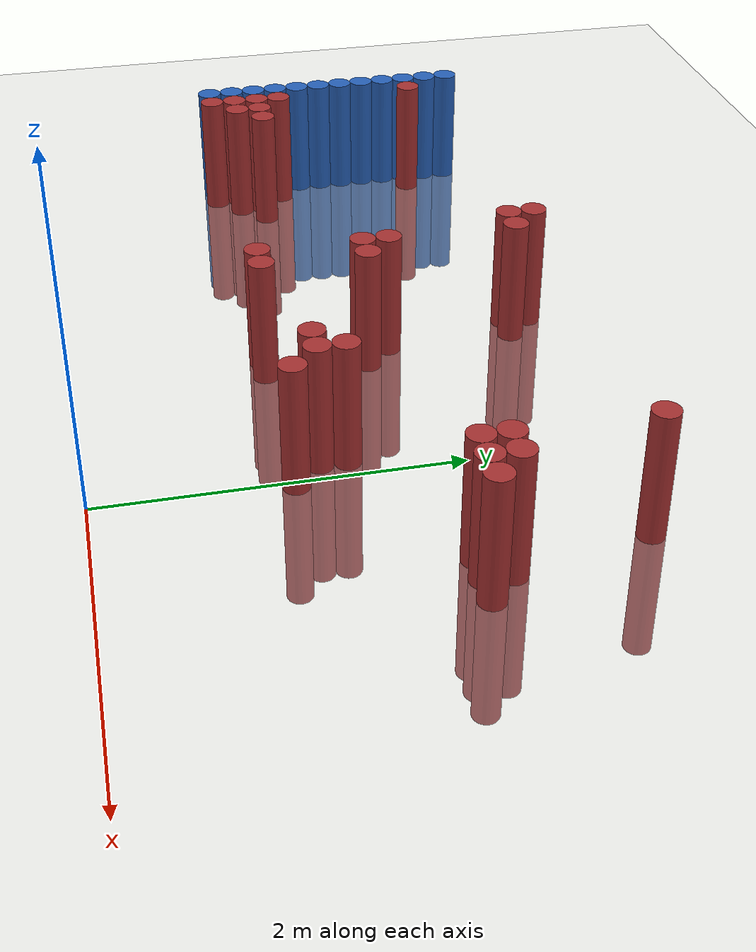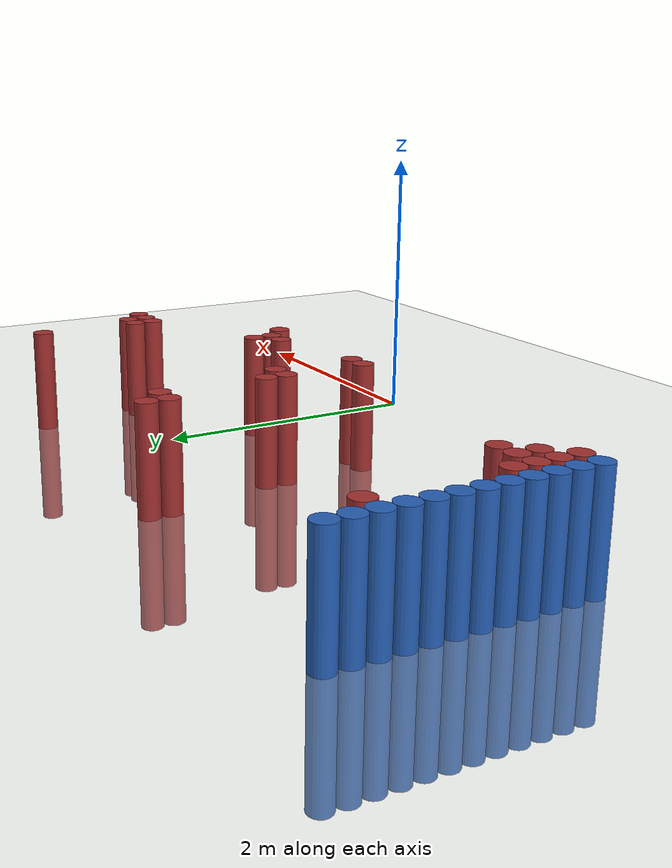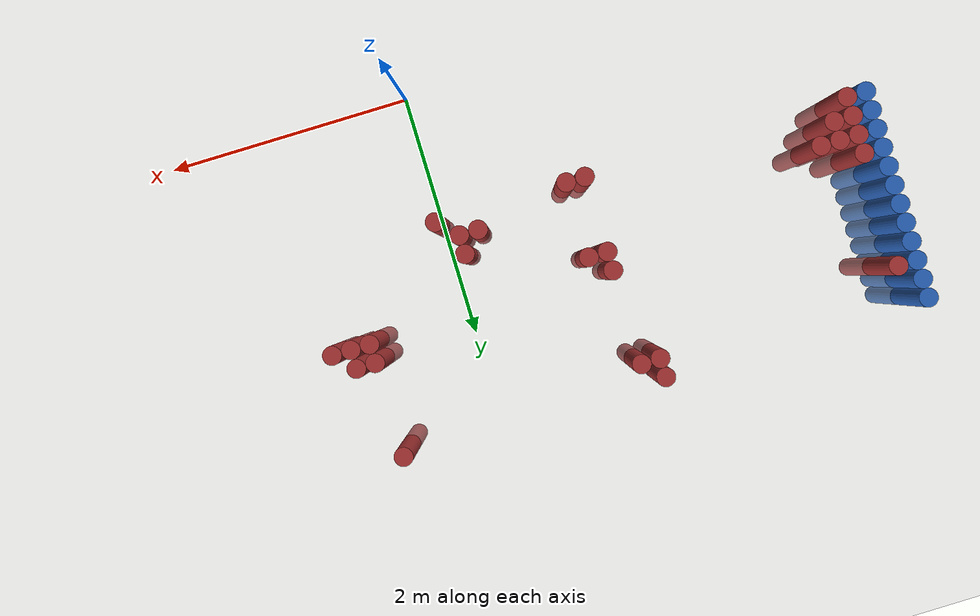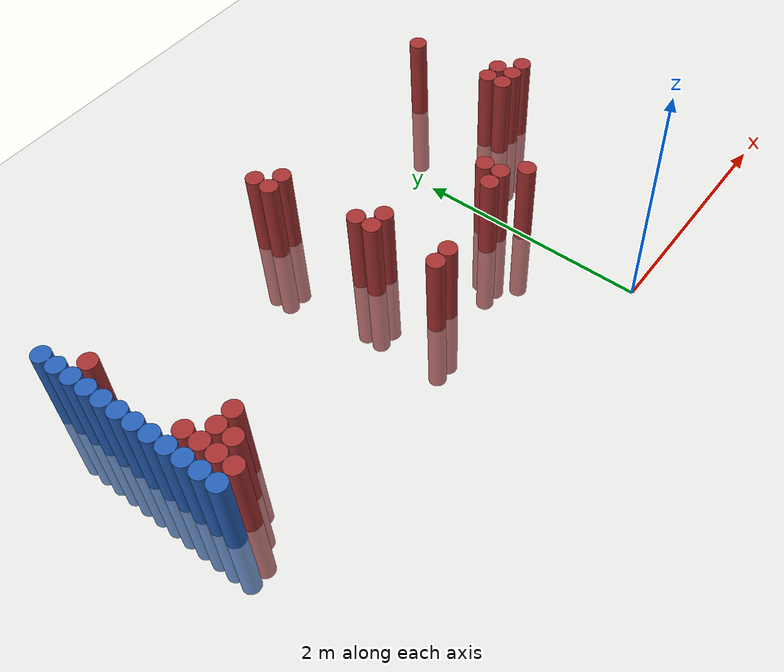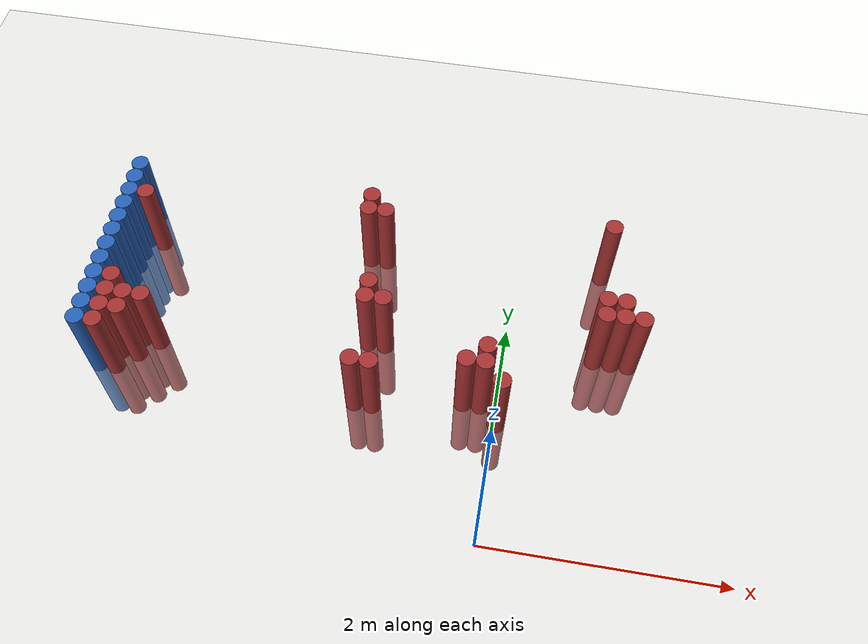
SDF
<sdf version="1.6">
 <world name="default">
  <model name="ground_plane">
   <static>1</static>
   <link name="link">
    <collision name="collision">
     <geometry><plane><normal>0 0 1</normal><size>100 100</size></plane></geometry>
     <surface><friction><ode><mu>100</mu><mu2>50</mu2></ode></friction></surface>
    </collision>
    <visual name="visual">
     <cast_shadows>0</cast_shadows>
     <geometry><plane><normal>0 0 1</normal><size>100 100</size></plane></geometry>
     <material>
      <script><uri>file://media/materials/scripts/gazebo.material</uri><name>Gazebo/Grey</name></script>
     </material>
    </visual>
   </link>
  </model>
  <model name="unit_cylinder_129">
   <static>1</static>
   <pose>-3.425000 1.075000 0.000000 0.000000 0.000000 0.000000</pose>
   <link name="link">
    <inertial>
     <mass>1</mass>
     <inertia><ixx>0.145833</ixx><ixy>0</ixy><ixz>0</ixz><iyy>0.145833</iyy><iyz>0</iyz><izz>0.125</izz></inertia>
    </inertial>
    <collision name="collision">
     <geometry><cylinder><radius>0.075000</radius><length>1.5</length></cylinder></geometry>
    </collision>
    <visual name="visual">
     <geometry><cylinder><radius>0.075000</radius><length>1.5</length></cylinder></geometry>
     <material>
      <ambient>0.152000 0.379000 0.720000 1</ambient>
      <diffuse>0.152000 0.379000 0.720000 1</diffuse>
     </material>
     <material>
      <script><name>Gazebo/Grey</name><uri>file://media/materials/scripts/gazebo.material</uri></script>
     </material>
    </visual>
   </link>
  </model>
  <model name="unit_cylinder_131">
   <static>1</static>
   <pose>-3.425000 1.225000 0.000000 0.000000 0.000000 0.000000</pose>
   <link name="link">
    <inertial>
     <mass>1</mass>
     <inertia><ixx>0.145833</ixx><ixy>0</ixy><ixz>0</ixz><iyy>0.145833</iyy><iyz>0</iyz><izz>0.125</izz></inertia>
    </inertial>
    <collision name="collision">
     <geometry><cylinder><radius>0.075000</radius><length>1.5</length></cylinder></geometry>
    </collision>
    <visual name="visual">
     <geometry><cylinder><radius>0.075000</radius><length>1.5</length></cylinder></geometry>
     <material>
      <ambient>0.152000 0.379000 0.720000 1</ambient>
      <diffuse>0.152000 0.379000 0.720000 1</diffuse>
     </material>
     <material>
      <script><name>Gazebo/Grey</name><uri>file://media/materials/scripts/gazebo.material</uri></script>
     </material>
    </visual>
   </link>
  </model>
  <model name="unit_cylinder_133">
   <static>1</static>
   <pose>-3.425000 1.375000 0.000000 0.000000 0.000000 0.000000</pose>
   <link name="link">
    <inertial>
     <mass>1</mass>
     <inertia><ixx>0.145833</ixx><ixy>0</ixy><ixz>0</ixz><iyy>0.145833</iyy><iyz>0</iyz><izz>0.125</izz></inertia>
    </inertial>
    <collision name="collision">
     <geometry><cylinder><radius>0.075000</radius><length>1.5</length></cylinder></geometry>
    </collision>
    <visual name="visual">
     <geometry><cylinder><radius>0.075000</radius><length>1.5</length></cylinder></geometry>
     <material>
      <ambient>0.152000 0.379000 0.720000 1</ambient>
      <diffuse>0.152000 0.379000 0.720000 1</diffuse>
     </material>
     <material>
      <script><name>Gazebo/Grey</name><uri>file://media/materials/scripts/gazebo.material</uri></script>
     </material>
    </visual>
   </link>
  </model>
  <model name="unit_cylinder_135">
   <static>1</static>
   <pose>-3.425000 1.525000 0.000000 0.000000 0.000000 0.000000</pose>
   <link name="link">
    <inertial>
     <mass>1</mass>
     <inertia><ixx>0.145833</ixx><ixy>0</ixy><ixz>0</ixz><iyy>0.145833</iyy><iyz>0</iyz><izz>0.125</izz></inertia>
    </inertial>
    <collision name="collision">
     <geometry><cylinder><radius>0.075000</radius><length>1.5</length></cylinder></geometry>
    </collision>
    <visual name="visual">
     <geometry><cylinder><radius>0.075000</radius><length>1.5</length></cylinder></geometry>
     <material>
      <ambient>0.152000 0.379000 0.720000 1</ambient>
      <diffuse>0.152000 0.379000 0.720000 1</diffuse>
     </material>
     <material>
      <script><name>Gazebo/Grey</name><uri>file://media/materials/scripts/gazebo.material</uri></script>
     </material>
    </visual>
   </link>
  </model>
  <model name="unit_cylinder_137">
   <static>1</static>
   <pose>-3.425000 1.675000 0.000000 0.000000 0.000000 0.000000</pose>
   <link name="link">
    <inertial>
     <mass>1</mass>
     <inertia><ixx>0.145833</ixx><ixy>0</ixy><ixz>0</ixz><iyy>0.145833</iyy><iyz>0</iyz><izz>0.125</izz></inertia>
    </inertial>
    <collision name="collision">
     <geometry><cylinder><radius>0.075000</radius><length>1.5</length></cylinder></geometry>
    </collision>
    <visual name="visual">
     <geometry><cylinder><radius>0.075000</radius><length>1.5</length></cylinder></geometry>
     <material>
      <ambient>0.152000 0.379000 0.720000 1</ambient>
      <diffuse>0.152000 0.379000 0.720000 1</diffuse>
     </material>
     <material>
      <script><name>Gazebo/Grey</name><uri>file://media/materials/scripts/gazebo.material</uri></script>
     </material>
    </visual>
   </link>
  </model>
  <model name="unit_cylinder_139">
   <static>1</static>
   <pose>-3.425000 1.825000 0.000000 0.000000 0.000000 0.000000</pose>
   <link name="link">
    <inertial>
     <mass>1</mass>
     <inertia><ixx>0.145833</ixx><ixy>0</ixy><ixz>0</ixz><iyy>0.145833</iyy><iyz>0</iyz><izz>0.125</izz></inertia>
    </inertial>
    <collision name="collision">
     <geometry><cylinder><radius>0.075000</radius><length>1.5</length></cylinder></geometry>
    </collision>
    <visual name="visual">
     <geometry><cylinder><radius>0.075000</radius><length>1.5</length></cylinder></geometry>
     <material>
      <ambient>0.152000 0.379000 0.720000 1</ambient>
      <diffuse>0.152000 0.379000 0.720000 1</diffuse>
     </material>
     <material>
      <script><name>Gazebo/Grey</name><uri>file://media/materials/scripts/gazebo.material</uri></script>
     </material>
    </visual>
   </link>
  </model>
  <model name="unit_cylinder_141">
   <static>1</static>
   <pose>-3.425000 1.975000 0.000000 0.000000 0.000000 0.000000</pose>
   <link name="link">
    <inertial>
     <mass>1</mass>
     <inertia><ixx>0.145833</ixx><ixy>0</ixy><ixz>0</ixz><iyy>0.145833</iyy><iyz>0</iyz><izz>0.125</izz></inertia>
    </inertial>
    <collision name="collision">
     <geometry><cylinder><radius>0.075000</radius><length>1.5</length></cylinder></geometry>
    </collision>
    <visual name="visual">
     <geometry><cylinder><radius>0.075000</radius><length>1.5</length></cylinder></geometry>
     <material>
      <ambient>0.152000 0.379000 0.720000 1</ambient>
      <diffuse>0.152000 0.379000 0.720000 1</diffuse>
     </material>
     <material>
      <script><name>Gazebo/Grey</name><uri>file://media/materials/scripts/gazebo.material</uri></script>
     </material>
    </visual>
   </link>
  </model>
  <model name="unit_cylinder_143">
   <static>1</static>
   <pose>-3.425000 2.125000 0.000000 0.000000 0.000000 0.000000</pose>
   <link name="link">
    <inertial>
     <mass>1</mass>
     <inertia><ixx>0.145833</ixx><ixy>0</ixy><ixz>0</ixz><iyy>0.145833</iyy><iyz>0</iyz><izz>0.125</izz></inertia>
    </inertial>
    <collision name="collision">
     <geometry><cylinder><radius>0.075000</radius><length>1.5</length></cylinder></geometry>
    </collision>
    <visual name="visual">
     <geometry><cylinder><radius>0.075000</radius><length>1.5</length></cylinder></geometry>
     <material>
      <ambient>0.152000 0.379000 0.720000 1</ambient>
      <diffuse>0.152000 0.379000 0.720000 1</diffuse>
     </material>
     <material>
      <script><name>Gazebo/Grey</name><uri>file://media/materials/scripts/gazebo.material</uri></script>
     </material>
    </visual>
   </link>
  </model>
  <model name="unit_cylinder_145">
   <static>1</static>
   <pose>-3.425000 2.275000 0.000000 0.000000 0.000000 0.000000</pose>
   <link name="link">
    <inertial>
     <mass>1</mass>
     <inertia><ixx>0.145833</ixx><ixy>0</ixy><ixz>0</ixz><iyy>0.145833</iyy><iyz>0</iyz><izz>0.125</izz></inertia>
    </inertial>
    <collision name="collision">
     <geometry><cylinder><radius>0.075000</radius><length>1.5</length></cylinder></geometry>
    </collision>
    <visual name="visual">
     <geometry><cylinder><radius>0.075000</radius><length>1.5</length></cylinder></geometry>
     <material>
      <ambient>0.152000 0.379000 0.720000 1</ambient>
      <diffuse>0.152000 0.379000 0.720000 1</diffuse>
     </material>
     <material>
      <script><name>Gazebo/Grey</name><uri>file://media/materials/scripts/gazebo.material</uri></script>
     </material>
    </visual>
   </link>
  </model>
  <model name="unit_cylinder_147">
   <static>1</static>
   <pose>-3.425000 2.425000 0.000000 0.000000 0.000000 0.000000</pose>
   <link name="link">
    <inertial>
     <mass>1</mass>
     <inertia><ixx>0.145833</ixx><ixy>0</ixy><ixz>0</ixz><iyy>0.145833</iyy><iyz>0</iyz><izz>0.125</izz></inertia>
    </inertial>
    <collision name="collision">
     <geometry><cylinder><radius>0.075000</radius><length>1.5</length></cylinder></geometry>
    </collision>
    <visual name="visual">
     <geometry><cylinder><radius>0.075000</radius><length>1.5</length></cylinder></geometry>
     <material>
      <ambient>0.152000 0.379000 0.720000 1</ambient>
      <diffuse>0.152000 0.379000 0.720000 1</diffuse>
     </material>
     <material>
      <script><name>Gazebo/Grey</name><uri>file://media/materials/scripts/gazebo.material</uri></script>
     </material>
    </visual>
   </link>
  </model>
  <model name="unit_cylinder_149">
   <static>1</static>
   <pose>-3.425000 2.575000 0.000000 0.000000 0.000000 0.000000</pose>
   <link name="link">
    <inertial>
     <mass>1</mass>
     <inertia><ixx>0.145833</ixx><ixy>0</ixy><ixz>0</ixz><iyy>0.145833</iyy><iyz>0</iyz><izz>0.125</izz></inertia>
    </inertial>
    <collision name="collision">
     <geometry><cylinder><radius>0.075000</radius><length>1.5</length></cylinder></geometry>
    </collision>
    <visual name="visual">
     <geometry><cylinder><radius>0.075000</radius><length>1.5</length></cylinder></geometry>
     <material>
      <ambient>0.152000 0.379000 0.720000 1</ambient>
      <diffuse>0.152000 0.379000 0.720000 1</diffuse>
     </material>
     <material>
      <script><name>Gazebo/Grey</name><uri>file://media/materials/scripts/gazebo.material</uri></script>
     </material>
    </visual>
   </link>
  </model>
  <model name="unit_cylinder_151">
   <static>1</static>
   <pose>-3.425000 2.725000 0.000000 0.000000 0.000000 0.000000</pose>
   <link name="link">
    <inertial>
     <mass>1</mass>
     <inertia><ixx>0.145833</ixx><ixy>0</ixy><ixz>0</ixz><iyy>0.145833</iyy><iyz>0</iyz><izz>0.125</izz></inertia>
    </inertial>
    <collision name="collision">
     <geometry><cylinder><radius>0.075000</radius><length>1.5</length></cylinder></geometry>
    </collision>
    <visual name="visual">
     <geometry><cylinder><radius>0.075000</radius><length>1.5</length></cylinder></geometry>
     <material>
      <ambient>0.152000 0.379000 0.720000 1</ambient>
      <diffuse>0.152000 0.379000 0.720000 1</diffuse>
     </material>
     <material>
      <script><name>Gazebo/Grey</name><uri>file://media/materials/scripts/gazebo.material</uri></script>
     </material>
    </visual>
   </link>
  </model>
  <model name="unit_cylinder_228">
   <static>1</static>
   <pose>-3.425000 1.075000 0.000000 0.000000 0.000000 0.000000</pose>
   <link name="link">
    <inertial>
     <mass>1</mass>
     <inertia><ixx>0.145833</ixx><ixy>0</ixy><ixz>0</ixz><iyy>0.145833</iyy><iyz>0</iyz><izz>0.125</izz></inertia>
    </inertial>
    <collision name="collision">
     <geometry><cylinder><radius>0.075000</radius><length>1.5</length></cylinder></geometry>
    </collision>
    <visual name="visual">
     <geometry><cylinder><radius>0.075000</radius><length>1.5</length></cylinder></geometry>
     <material>
      <ambient>0.152000 0.379000 0.720000 1</ambient>
      <diffuse>0.152000 0.379000 0.720000 1</diffuse>
     </material>
     <material>
      <script><name>Gazebo/Grey</name><uri>file://media/materials/scripts/gazebo.material</uri></script>
     </material>
    </visual>
   </link>
  </model>
  <model name="unit_cylinder_229">
   <static>1</static>
   <pose>-3.425000 1.225000 0.000000 0.000000 0.000000 0.000000</pose>
   <link name="link">
    <inertial>
     <mass>1</mass>
     <inertia><ixx>0.145833</ixx><ixy>0</ixy><ixz>0</ixz><iyy>0.145833</iyy><iyz>0</iyz><izz>0.125</izz></inertia>
    </inertial>
    <collision name="collision">
     <geometry><cylinder><radius>0.075000</radius><length>1.5</length></cylinder></geometry>
    </collision>
    <visual name="visual">
     <geometry><cylinder><radius>0.075000</radius><length>1.5</length></cylinder></geometry>
     <material>
      <ambient>0.152000 0.379000 0.720000 1</ambient>
      <diffuse>0.152000 0.379000 0.720000 1</diffuse>
     </material>
     <material>
      <script><name>Gazebo/Grey</name><uri>file://media/materials/scripts/gazebo.material</uri></script>
     </material>
    </visual>
   </link>
  </model>
  <model name="unit_cylinder_230">
   <static>1</static>
   <pose>-3.425000 1.375000 0.000000 0.000000 0.000000 0.000000</pose>
   <link name="link">
    <inertial>
     <mass>1</mass>
     <inertia><ixx>0.145833</ixx><ixy>0</ixy><ixz>0</ixz><iyy>0.145833</iyy><iyz>0</iyz><izz>0.125</izz></inertia>
    </inertial>
    <collision name="collision">
     <geometry><cylinder><radius>0.075000</radius><length>1.5</length></cylinder></geometry>
    </collision>
    <visual name="visual">
     <geometry><cylinder><radius>0.075000</radius><length>1.5</length></cylinder></geometry>
     <material>
      <ambient>0.152000 0.379000 0.720000 1</ambient>
      <diffuse>0.152000 0.379000 0.720000 1</diffuse>
     </material>
     <material>
      <script><name>Gazebo/Grey</name><uri>file://media/materials/scripts/gazebo.material</uri></script>
     </material>
    </visual>
   </link>
  </model>
  <model name="unit_cylinder_231">
   <static>1</static>
   <pose>-3.425000 1.525000 0.000000 0.000000 0.000000 0.000000</pose>
   <link name="link">
    <inertial>
     <mass>1</mass>
     <inertia><ixx>0.145833</ixx><ixy>0</ixy><ixz>0</ixz><iyy>0.145833</iyy><iyz>0</iyz><izz>0.125</izz></inertia>
    </inertial>
    <collision name="collision">
     <geometry><cylinder><radius>0.075000</radius><length>1.5</length></cylinder></geometry>
    </collision>
    <visual name="visual">
     <geometry><cylinder><radius>0.075000</radius><length>1.5</length></cylinder></geometry>
     <material>
      <ambient>0.152000 0.379000 0.720000 1</ambient>
      <diffuse>0.152000 0.379000 0.720000 1</diffuse>
     </material>
     <material>
      <script><name>Gazebo/Grey</name><uri>file://media/materials/scripts/gazebo.material</uri></script>
     </material>
    </visual>
   </link>
  </model>
  <model name="unit_cylinder_232">
   <static>1</static>
   <pose>-3.425000 1.675000 0.000000 0.000000 0.000000 0.000000</pose>
   <link name="link">
    <inertial>
     <mass>1</mass>
     <inertia><ixx>0.145833</ixx><ixy>0</ixy><ixz>0</ixz><iyy>0.145833</iyy><iyz>0</iyz><izz>0.125</izz></inertia>
    </inertial>
    <collision name="collision">
     <geometry><cylinder><radius>0.075000</radius><length>1.5</length></cylinder></geometry>
    </collision>
    <visual name="visual">
     <geometry><cylinder><radius>0.075000</radius><length>1.5</length></cylinder></geometry>
     <material>
      <ambient>0.152000 0.379000 0.720000 1</ambient>
      <diffuse>0.152000 0.379000 0.720000 1</diffuse>
     </material>
     <material>
      <script><name>Gazebo/Grey</name><uri>file://media/materials/scripts/gazebo.material</uri></script>
     </material>
    </visual>
   </link>
  </model>
  <model name="unit_cylinder_233">
   <static>1</static>
   <pose>-3.425000 1.825000 0.000000 0.000000 0.000000 0.000000</pose>
   <link name="link">
    <inertial>
     <mass>1</mass>
     <inertia><ixx>0.145833</ixx><ixy>0</ixy><ixz>0</ixz><iyy>0.145833</iyy><iyz>0</iyz><izz>0.125</izz></inertia>
    </inertial>
    <collision name="collision">
     <geometry><cylinder><radius>0.075000</radius><length>1.5</length></cylinder></geometry>
    </collision>
    <visual name="visual">
     <geometry><cylinder><radius>0.075000</radius><length>1.5</length></cylinder></geometry>
     <material>
      <ambient>0.152000 0.379000 0.720000 1</ambient>
      <diffuse>0.152000 0.379000 0.720000 1</diffuse>
     </material>
     <material>
      <script><name>Gazebo/Grey</name><uri>file://media/materials/scripts/gazebo.material</uri></script>
     </material>
    </visual>
   </link>
  </model>
  <model name="unit_cylinder_234">
   <static>1</static>
   <pose>-3.425000 1.975000 0.000000 0.000000 0.000000 0.000000</pose>
   <link name="link">
    <inertial>
     <mass>1</mass>
     <inertia><ixx>0.145833</ixx><ixy>0</ixy><ixz>0</ixz><iyy>0.145833</iyy><iyz>0</iyz><izz>0.125</izz></inertia>
    </inertial>
    <collision name="collision">
     <geometry><cylinder><radius>0.075000</radius><length>1.5</length></cylinder></geometry>
    </collision>
    <visual name="visual">
     <geometry><cylinder><radius>0.075000</radius><length>1.5</length></cylinder></geometry>
     <material>
      <ambient>0.152000 0.379000 0.720000 1</ambient>
      <diffuse>0.152000 0.379000 0.720000 1</diffuse>
     </material>
     <material>
      <script><name>Gazebo/Grey</name><uri>file://media/materials/scripts/gazebo.material</uri></script>
     </material>
    </visual>
   </link>
  </model>
  <model name="unit_cylinder_235">
   <static>1</static>
   <pose>-3.425000 2.125000 0.000000 0.000000 0.000000 0.000000</pose>
   <link name="link">
    <inertial>
     <mass>1</mass>
     <inertia><ixx>0.145833</ixx><ixy>0</ixy><ixz>0</ixz><iyy>0.145833</iyy><iyz>0</iyz><izz>0.125</izz></inertia>
    </inertial>
    <collision name="collision">
     <geometry><cylinder><radius>0.075000</radius><length>1.5</length></cylinder></geometry>
    </collision>
    <visual name="visual">
     <geometry><cylinder><radius>0.075000</radius><length>1.5</length></cylinder></geometry>
     <material>
      <ambient>0.152000 0.379000 0.720000 1</ambient>
      <diffuse>0.152000 0.379000 0.720000 1</diffuse>
     </material>
     <material>
      <script><name>Gazebo/Grey</name><uri>file://media/materials/scripts/gazebo.material</uri></script>
     </material>
    </visual>
   </link>
  </model>
  <model name="unit_cylinder_236">
   <static>1</static>
   <pose>-3.425000 2.275000 0.000000 0.000000 0.000000 0.000000</pose>
   <link name="link">
    <inertial>
     <mass>1</mass>
     <inertia><ixx>0.145833</ixx><ixy>0</ixy><ixz>0</ixz><iyy>0.145833</iyy><iyz>0</iyz><izz>0.125</izz></inertia>
    </inertial>
    <collision name="collision">
     <geometry><cylinder><radius>0.075000</radius><length>1.5</length></cylinder></geometry>
    </collision>
    <visual name="visual">
     <geometry><cylinder><radius>0.075000</radius><length>1.5</length></cylinder></geometry>
     <material>
      <ambient>0.152000 0.379000 0.720000 1</ambient>
      <diffuse>0.152000 0.379000 0.720000 1</diffuse>
     </material>
     <material>
      <script><name>Gazebo/Grey</name><uri>file://media/materials/scripts/gazebo.material</uri></script>
     </material>
    </visual>
   </link>
  </model>
  <model name="unit_cylinder_237">
   <static>1</static>
   <pose>-3.425000 2.425000 0.000000 0.000000 0.000000 0.000000</pose>
   <link name="link">
    <inertial>
     <mass>1</mass>
     <inertia><ixx>0.145833</ixx><ixy>0</ixy><ixz>0</ixz><iyy>0.145833</iyy><iyz>0</iyz><izz>0.125</izz></inertia>
    </inertial>
    <collision name="collision">
     <geometry><cylinder><radius>0.075000</radius><length>1.5</length></cylinder></geometry>
    </collision>
    <visual name="visual">
     <geometry><cylinder><radius>0.075000</radius><length>1.5</length></cylinder></geometry>
     <material>
      <ambient>0.152000 0.379000 0.720000 1</ambient>
      <diffuse>0.152000 0.379000 0.720000 1</diffuse>
     </material>
     <material>
      <script><name>Gazebo/Grey</name><uri>file://media/materials/scripts/gazebo.material</uri></script>
     </material>
    </visual>
   </link>
  </model>
  <model name="unit_cylinder_238">
   <static>1</static>
   <pose>-3.425000 2.575000 0.000000 0.000000 0.000000 0.000000</pose>
   <link name="link">
    <inertial>
     <mass>1</mass>
     <inertia><ixx>0.145833</ixx><ixy>0</ixy><ixz>0</ixz><iyy>0.145833</iyy><iyz>0</iyz><izz>0.125</izz></inertia>
    </inertial>
    <collision name="collision">
     <geometry><cylinder><radius>0.075000</radius><length>1.5</length></cylinder></geometry>
    </collision>
    <visual name="visual">
     <geometry><cylinder><radius>0.075000</radius><length>1.5</length></cylinder></geometry>
     <material>
      <ambient>0.152000 0.379000 0.720000 1</ambient>
      <diffuse>0.152000 0.379000 0.720000 1</diffuse>
     </material>
     <material>
      <script><name>Gazebo/Grey</name><uri>file://media/materials/scripts/gazebo.material</uri></script>
     </material>
    </visual>
   </link>
  </model>
  <model name="unit_cylinder_239">
   <static>1</static>
   <pose>-3.425000 2.725000 0.000000 0.000000 0.000000 0.000000</pose>
   <link name="link">
    <inertial>
     <mass>1</mass>
     <inertia><ixx>0.145833</ixx><ixy>0</ixy><ixz>0</ixz><iyy>0.145833</iyy><iyz>0</iyz><izz>0.125</izz></inertia>
    </inertial>
    <collision name="collision">
     <geometry><cylinder><radius>0.075000</radius><length>1.5</length></cylinder></geometry>
    </collision>
    <visual name="visual">
     <geometry><cylinder><radius>0.075000</radius><length>1.5</length></cylinder></geometry>
     <material>
      <ambient>0.152000 0.379000 0.720000 1</ambient>
      <diffuse>0.152000 0.379000 0.720000 1</diffuse>
     </material>
     <material>
      <script><name>Gazebo/Grey</name><uri>file://media/materials/scripts/gazebo.material</uri></script>
     </material>
    </visual>
   </link>
  </model>
  <model name="unit_cylinder_265">
   <static>1</static>
   <pose>-3.275000 1.075000 0.000000 0.000000 0.000000 0.000000</pose>
   <link name="link">
    <inertial>
     <mass>1</mass>
     <inertia><ixx>0.145833</ixx><ixy>0</ixy><ixz>0</ixz><iyy>0.145833</iyy><iyz>0</iyz><izz>0.125</izz></inertia>
    </inertial>
    <collision name="collision">
     <geometry><cylinder><radius>0.075000</radius><length>1.5</length></cylinder></geometry>
    </collision>
    <visual name="visual">
     <geometry><cylinder><radius>0.075000</radius><length>1.5</length></cylinder></geometry>
     <material>
      <ambient>0.648000 0.192000 0.192000 1</ambient>
      <diffuse>0.648000 0.192000 0.192000 1</diffuse>
     </material>
     <material>
      <script><name>Gazebo/Grey</name><uri>file://media/materials/scripts/gazebo.material</uri></script>
     </material>
    </visual>
   </link>
  </model>
  <model name="unit_cylinder_266">
   <static>1</static>
   <pose>-3.275000 1.225000 0.000000 0.000000 0.000000 0.000000</pose>
   <link name="link">
    <inertial>
     <mass>1</mass>
     <inertia><ixx>0.145833</ixx><ixy>0</ixy><ixz>0</ixz><iyy>0.145833</iyy><iyz>0</iyz><izz>0.125</izz></inertia>
    </inertial>
    <collision name="collision">
     <geometry><cylinder><radius>0.075000</radius><length>1.5</length></cylinder></geometry>
    </collision>
    <visual name="visual">
     <geometry><cylinder><radius>0.075000</radius><length>1.5</length></cylinder></geometry>
     <material>
      <ambient>0.648000 0.192000 0.192000 1</ambient>
      <diffuse>0.648000 0.192000 0.192000 1</diffuse>
     </material>
     <material>
      <script><name>Gazebo/Grey</name><uri>file://media/materials/scripts/gazebo.material</uri></script>
     </material>
    </visual>
   </link>
  </model>
  <model name="unit_cylinder_267">
   <static>1</static>
   <pose>-3.275000 1.375000 0.000000 0.000000 0.000000 0.000000</pose>
   <link name="link">
    <inertial>
     <mass>1</mass>
     <inertia><ixx>0.145833</ixx><ixy>0</ixy><ixz>0</ixz><iyy>0.145833</iyy><iyz>0</iyz><izz>0.125</izz></inertia>
    </inertial>
    <collision name="collision">
     <geometry><cylinder><radius>0.075000</radius><length>1.5</length></cylinder></geometry>
    </collision>
    <visual name="visual">
     <geometry><cylinder><radius>0.075000</radius><length>1.5</length></cylinder></geometry>
     <material>
      <ambient>0.648000 0.192000 0.192000 1</ambient>
      <diffuse>0.648000 0.192000 0.192000 1</diffuse>
     </material>
     <material>
      <script><name>Gazebo/Grey</name><uri>file://media/materials/scripts/gazebo.material</uri></script>
     </material>
    </visual>
   </link>
  </model>
  <model name="unit_cylinder_268">
   <static>1</static>
   <pose>-3.275000 1.525000 0.000000 0.000000 0.000000 0.000000</pose>
   <link name="link">
    <inertial>
     <mass>1</mass>
     <inertia><ixx>0.145833</ixx><ixy>0</ixy><ixz>0</ixz><iyy>0.145833</iyy><iyz>0</iyz><izz>0.125</izz></inertia>
    </inertial>
    <collision name="collision">
     <geometry><cylinder><radius>0.075000</radius><length>1.5</length></cylinder></geometry>
    </collision>
    <visual name="visual">
     <geometry><cylinder><radius>0.075000</radius><length>1.5</length></cylinder></geometry>
     <material>
      <ambient>0.648000 0.192000 0.192000 1</ambient>
      <diffuse>0.648000 0.192000 0.192000 1</diffuse>
     </material>
     <material>
      <script><name>Gazebo/Grey</name><uri>file://media/materials/scripts/gazebo.material</uri></script>
     </material>
    </visual>
   </link>
  </model>
  <model name="unit_cylinder_269">
   <static>1</static>
   <pose>-3.275000 2.425000 0.000000 0.000000 0.000000 0.000000</pose>
   <link name="link">
    <inertial>
     <mass>1</mass>
     <inertia><ixx>0.145833</ixx><ixy>0</ixy><ixz>0</ixz><iyy>0.145833</iyy><iyz>0</iyz><izz>0.125</izz></inertia>
    </inertial>
    <collision name="collision">
     <geometry><cylinder><radius>0.075000</radius><length>1.5</length></cylinder></geometry>
    </collision>
    <visual name="visual">
     <geometry><cylinder><radius>0.075000</radius><length>1.5</length></cylinder></geometry>
     <material>
      <ambient>0.648000 0.192000 0.192000 1</ambient>
      <diffuse>0.648000 0.192000 0.192000 1</diffuse>
     </material>
     <material>
      <script><name>Gazebo/Grey</name><uri>file://media/materials/scripts/gazebo.material</uri></script>
     </material>
    </visual>
   </link>
  </model>
  <model name="unit_cylinder_283">
   <static>1</static>
   <pose>-3.125000 1.225000 0.000000 0.000000 0.000000 0.000000</pose>
   <link name="link">
    <inertial>
     <mass>1</mass>
     <inertia><ixx>0.145833</ixx><ixy>0</ixy><ixz>0</ixz><iyy>0.145833</iyy><iyz>0</iyz><izz>0.125</izz></inertia>
    </inertial>
    <collision name="collision">
     <geometry><cylinder><radius>0.075000</radius><length>1.5</length></cylinder></geometry>
    </collision>
    <visual name="visual">
     <geometry><cylinder><radius>0.075000</radius><length>1.5</length></cylinder></geometry>
     <material>
      <ambient>0.648000 0.192000 0.192000 1</ambient>
      <diffuse>0.648000 0.192000 0.192000 1</diffuse>
     </material>
     <material>
      <script><name>Gazebo/Grey</name><uri>file://media/materials/scripts/gazebo.material</uri></script>
     </material>
    </visual>
   </link>
  </model>
  <model name="unit_cylinder_284">
   <static>1</static>
   <pose>-3.125000 1.375000 0.000000 0.000000 0.000000 0.000000</pose>
   <link name="link">
    <inertial>
     <mass>1</mass>
     <inertia><ixx>0.145833</ixx><ixy>0</ixy><ixz>0</ixz><iyy>0.145833</iyy><iyz>0</iyz><izz>0.125</izz></inertia>
    </inertial>
    <collision name="collision">
     <geometry><cylinder><radius>0.075000</radius><length>1.5</length></cylinder></geometry>
    </collision>
    <visual name="visual">
     <geometry><cylinder><radius>0.075000</radius><length>1.5</length></cylinder></geometry>
     <material>
      <ambient>0.648000 0.192000 0.192000 1</ambient>
      <diffuse>0.648000 0.192000 0.192000 1</diffuse>
     </material>
     <material>
      <script><name>Gazebo/Grey</name><uri>file://media/materials/scripts/gazebo.material</uri></script>
     </material>
    </visual>
   </link>
  </model>
  <model name="unit_cylinder_292">
   <static>1</static>
   <pose>-2.975000 1.375000 0.000000 0.000000 0.000000 0.000000</pose>
   <link name="link">
    <inertial>
     <mass>1</mass>
     <inertia><ixx>0.145833</ixx><ixy>0</ixy><ixz>0</ixz><iyy>0.145833</iyy><iyz>0</iyz><izz>0.125</izz></inertia>
    </inertial>
    <collision name="collision">
     <geometry><cylinder><radius>0.075000</radius><length>1.5</length></cylinder></geometry>
    </collision>
    <visual name="visual">
     <geometry><cylinder><radius>0.075000</radius><length>1.5</length></cylinder></geometry>
     <material>
      <ambient>0.648000 0.192000 0.192000 1</ambient>
      <diffuse>0.648000 0.192000 0.192000 1</diffuse>
     </material>
     <material>
      <script><name>Gazebo/Grey</name><uri>file://media/materials/scripts/gazebo.material</uri></script>
     </material>
    </visual>
   </link>
  </model>
  <model name="unit_cylinder_306">
   <static>1</static>
   <pose>-1.325000 2.575000 0.000000 0.000000 0.000000 0.000000</pose>
   <link name="link">
    <inertial>
     <mass>1</mass>
     <inertia><ixx>0.145833</ixx><ixy>0</ixy><ixz>0</ixz><iyy>0.145833</iyy><iyz>0</iyz><izz>0.125</izz></inertia>
    </inertial>
    <collision name="collision">
     <geometry><cylinder><radius>0.075000</radius><length>1.5</length></cylinder></geometry>
    </collision>
    <visual name="visual">
     <geometry><cylinder><radius>0.075000</radius><length>1.5</length></cylinder></geometry>
     <material>
      <ambient>0.648000 0.192000 0.192000 1</ambient>
      <diffuse>0.648000 0.192000 0.192000 1</diffuse>
     </material>
     <material>
      <script><name>Gazebo/Grey</name><uri>file://media/materials/scripts/gazebo.material</uri></script>
     </material>
    </visual>
   </link>
  </model>
  <model name="unit_cylinder_307">
   <static>1</static>
   <pose>-1.325000 2.725000 0.000000 0.000000 0.000000 0.000000</pose>
   <link name="link">
    <inertial>
     <mass>1</mass>
     <inertia><ixx>0.145833</ixx><ixy>0</ixy><ixz>0</ixz><iyy>0.145833</iyy><iyz>0</iyz><izz>0.125</izz></inertia>
    </inertial>
    <collision name="collision">
     <geometry><cylinder><radius>0.075000</radius><length>1.5</length></cylinder></geometry>
    </collision>
    <visual name="visual">
     <geometry><cylinder><radius>0.075000</radius><length>1.5</length></cylinder></geometry>
     <material>
      <ambient>0.648000 0.192000 0.192000 1</ambient>
      <diffuse>0.648000 0.192000 0.192000 1</diffuse>
     </material>
     <material>
      <script><name>Gazebo/Grey</name><uri>file://media/materials/scripts/gazebo.material</uri></script>
     </material>
    </visual>
   </link>
  </model>
  <model name="unit_cylinder_310">
   <static>1</static>
   <pose>-1.175000 1.075000 0.000000 0.000000 0.000000 0.000000</pose>
   <link name="link">
    <inertial>
     <mass>1</mass>
     <inertia><ixx>0.145833</ixx><ixy>0</ixy><ixz>0</ixz><iyy>0.145833</iyy><iyz>0</iyz><izz>0.125</izz></inertia>
    </inertial>
    <collision name="collision">
     <geometry><cylinder><radius>0.075000</radius><length>1.5</length></cylinder></geometry>
    </collision>
    <visual name="visual">
     <geometry><cylinder><radius>0.075000</radius><length>1.5</length></cylinder></geometry>
     <material>
      <ambient>0.648000 0.192000 0.192000 1</ambient>
      <diffuse>0.648000 0.192000 0.192000 1</diffuse>
     </material>
     <material>
      <script><name>Gazebo/Grey</name><uri>file://media/materials/scripts/gazebo.material</uri></script>
     </material>
    </visual>
   </link>
  </model>
  <model name="unit_cylinder_311">
   <static>1</static>
   <pose>-1.175000 1.675000 0.000000 0.000000 0.000000 0.000000</pose>
   <link name="link">
    <inertial>
     <mass>1</mass>
     <inertia><ixx>0.145833</ixx><ixy>0</ixy><ixz>0</ixz><iyy>0.145833</iyy><iyz>0</iyz><izz>0.125</izz></inertia>
    </inertial>
    <collision name="collision">
     <geometry><cylinder><radius>0.075000</radius><length>1.5</length></cylinder></geometry>
    </collision>
    <visual name="visual">
     <geometry><cylinder><radius>0.075000</radius><length>1.5</length></cylinder></geometry>
     <material>
      <ambient>0.648000 0.192000 0.192000 1</ambient>
      <diffuse>0.648000 0.192000 0.192000 1</diffuse>
     </material>
     <material>
      <script><name>Gazebo/Grey</name><uri>file://media/materials/scripts/gazebo.material</uri></script>
     </material>
    </visual>
   </link>
  </model>
  <model name="unit_cylinder_312">
   <static>1</static>
   <pose>-1.175000 1.825000 0.000000 0.000000 0.000000 0.000000</pose>
   <link name="link">
    <inertial>
     <mass>1</mass>
     <inertia><ixx>0.145833</ixx><ixy>0</ixy><ixz>0</ixz><iyy>0.145833</iyy><iyz>0</iyz><izz>0.125</izz></inertia>
    </inertial>
    <collision name="collision">
     <geometry><cylinder><radius>0.075000</radius><length>1.5</length></cylinder></geometry>
    </collision>
    <visual name="visual">
     <geometry><cylinder><radius>0.075000</radius><length>1.5</length></cylinder></geometry>
     <material>
      <ambient>0.648000 0.192000 0.192000 1</ambient>
      <diffuse>0.648000 0.192000 0.192000 1</diffuse>
     </material>
     <material>
      <script><name>Gazebo/Grey</name><uri>file://media/materials/scripts/gazebo.material</uri></script>
     </material>
    </visual>
   </link>
  </model>
  <model name="unit_cylinder_313">
   <static>1</static>
   <pose>-1.175000 2.575000 0.000000 0.000000 0.000000 0.000000</pose>
   <link name="link">
    <inertial>
     <mass>1</mass>
     <inertia><ixx>0.145833</ixx><ixy>0</ixy><ixz>0</ixz><iyy>0.145833</iyy><iyz>0</iyz><izz>0.125</izz></inertia>
    </inertial>
    <collision name="collision">
     <geometry><cylinder><radius>0.075000</radius><length>1.5</length></cylinder></geometry>
    </collision>
    <visual name="visual">
     <geometry><cylinder><radius>0.075000</radius><length>1.5</length></cylinder></geometry>
     <material>
      <ambient>0.648000 0.192000 0.192000 1</ambient>
      <diffuse>0.648000 0.192000 0.192000 1</diffuse>
     </material>
     <material>
      <script><name>Gazebo/Grey</name><uri>file://media/materials/scripts/gazebo.material</uri></script>
     </material>
    </visual>
   </link>
  </model>
  <model name="unit_cylinder_318">
   <static>1</static>
   <pose>-1.025000 1.075000 0.000000 0.000000 0.000000 0.000000</pose>
   <link name="link">
    <inertial>
     <mass>1</mass>
     <inertia><ixx>0.145833</ixx><ixy>0</ixy><ixz>0</ixz><iyy>0.145833</iyy><iyz>0</iyz><izz>0.125</izz></inertia>
    </inertial>
    <collision name="collision">
     <geometry><cylinder><radius>0.075000</radius><length>1.5</length></cylinder></geometry>
    </collision>
    <visual name="visual">
     <geometry><cylinder><radius>0.075000</radius><length>1.5</length></cylinder></geometry>
     <material>
      <ambient>0.648000 0.192000 0.192000 1</ambient>
      <diffuse>0.648000 0.192000 0.192000 1</diffuse>
     </material>
     <material>
      <script><name>Gazebo/Grey</name><uri>file://media/materials/scripts/gazebo.material</uri></script>
     </material>
    </visual>
   </link>
  </model>
  <model name="unit_cylinder_319">
   <static>1</static>
   <pose>-1.025000 1.675000 0.000000 0.000000 0.000000 0.000000</pose>
   <link name="link">
    <inertial>
     <mass>1</mass>
     <inertia><ixx>0.145833</ixx><ixy>0</ixy><ixz>0</ixz><iyy>0.145833</iyy><iyz>0</iyz><izz>0.125</izz></inertia>
    </inertial>
    <collision name="collision">
     <geometry><cylinder><radius>0.075000</radius><length>1.5</length></cylinder></geometry>
    </collision>
    <visual name="visual">
     <geometry><cylinder><radius>0.075000</radius><length>1.5</length></cylinder></geometry>
     <material>
      <ambient>0.648000 0.192000 0.192000 1</ambient>
      <diffuse>0.648000 0.192000 0.192000 1</diffuse>
     </material>
     <material>
      <script><name>Gazebo/Grey</name><uri>file://media/materials/scripts/gazebo.material</uri></script>
     </material>
    </visual>
   </link>
  </model>
  <model name="unit_cylinder_330">
   <static>1</static>
   <pose>-0.275000 1.225000 0.000000 0.000000 0.000000 0.000000</pose>
   <link name="link">
    <inertial>
     <mass>1</mass>
     <inertia><ixx>0.145833</ixx><ixy>0</ixy><ixz>0</ixz><iyy>0.145833</iyy><iyz>0</iyz><izz>0.125</izz></inertia>
    </inertial>
    <collision name="collision">
     <geometry><cylinder><radius>0.075000</radius><length>1.5</length></cylinder></geometry>
    </collision>
    <visual name="visual">
     <geometry><cylinder><radius>0.075000</radius><length>1.5</length></cylinder></geometry>
     <material>
      <ambient>0.648000 0.192000 0.192000 1</ambient>
      <diffuse>0.648000 0.192000 0.192000 1</diffuse>
     </material>
     <material>
      <script><name>Gazebo/Grey</name><uri>file://media/materials/scripts/gazebo.material</uri></script>
     </material>
    </visual>
   </link>
  </model>
  <model name="unit_cylinder_333">
   <static>1</static>
   <pose>-0.125000 1.225000 0.000000 0.000000 0.000000 0.000000</pose>
   <link name="link">
    <inertial>
     <mass>1</mass>
     <inertia><ixx>0.145833</ixx><ixy>0</ixy><ixz>0</ixz><iyy>0.145833</iyy><iyz>0</iyz><izz>0.125</izz></inertia>
    </inertial>
    <collision name="collision">
     <geometry><cylinder><radius>0.075000</radius><length>1.5</length></cylinder></geometry>
    </collision>
    <visual name="visual">
     <geometry><cylinder><radius>0.075000</radius><length>1.5</length></cylinder></geometry>
     <material>
      <ambient>0.648000 0.192000 0.192000 1</ambient>
      <diffuse>0.648000 0.192000 0.192000 1</diffuse>
     </material>
     <material>
      <script><name>Gazebo/Grey</name><uri>file://media/materials/scripts/gazebo.material</uri></script>
     </material>
    </visual>
   </link>
  </model>
  <model name="unit_cylinder_334">
   <static>1</static>
   <pose>-0.125000 1.375000 0.000000 0.000000 0.000000 0.000000</pose>
   <link name="link">
    <inertial>
     <mass>1</mass>
     <inertia><ixx>0.145833</ixx><ixy>0</ixy><ixz>0</ixz><iyy>0.145833</iyy><iyz>0</iyz><izz>0.125</izz></inertia>
    </inertial>
    <collision name="collision">
     <geometry><cylinder><radius>0.075000</radius><length>1.5</length></cylinder></geometry>
    </collision>
    <visual name="visual">
     <geometry><cylinder><radius>0.075000</radius><length>1.5</length></cylinder></geometry>
     <material>
      <ambient>0.648000 0.192000 0.192000 1</ambient>
      <diffuse>0.648000 0.192000 0.192000 1</diffuse>
     </material>
     <material>
      <script><name>Gazebo/Grey</name><uri>file://media/materials/scripts/gazebo.material</uri></script>
     </material>
    </visual>
   </link>
  </model>
  <model name="unit_cylinder_337">
   <static>1</static>
   <pose>0.025000 1.075000 0.000000 0.000000 0.000000 0.000000</pose>
   <link name="link">
    <inertial>
     <mass>1</mass>
     <inertia><ixx>0.145833</ixx><ixy>0</ixy><ixz>0</ixz><iyy>0.145833</iyy><iyz>0</iyz><izz>0.125</izz></inertia>
    </inertial>
    <collision name="collision">
     <geometry><cylinder><radius>0.075000</radius><length>1.5</length></cylinder></geometry>
    </collision>
    <visual name="visual">
     <geometry><cylinder><radius>0.075000</radius><length>1.5</length></cylinder></geometry>
     <material>
      <ambient>0.648000 0.192000 0.192000 1</ambient>
      <diffuse>0.648000 0.192000 0.192000 1</diffuse>
     </material>
     <material>
      <script><name>Gazebo/Grey</name><uri>file://media/materials/scripts/gazebo.material</uri></script>
     </material>
    </visual>
   </link>
  </model>
  <model name="unit_cylinder_348">
   <static>1</static>
   <pose>0.775000 1.825000 0.000000 0.000000 0.000000 0.000000</pose>
   <link name="link">
    <inertial>
     <mass>1</mass>
     <inertia><ixx>0.145833</ixx><ixy>0</ixy><ixz>0</ixz><iyy>0.145833</iyy><iyz>0</iyz><izz>0.125</izz></inertia>
    </inertial>
    <collision name="collision">
     <geometry><cylinder><radius>0.075000</radius><length>1.5</length></cylinder></geometry>
    </collision>
    <visual name="visual">
     <geometry><cylinder><radius>0.075000</radius><length>1.5</length></cylinder></geometry>
     <material>
      <ambient>0.648000 0.192000 0.192000 1</ambient>
      <diffuse>0.648000 0.192000 0.192000 1</diffuse>
     </material>
     <material>
      <script><name>Gazebo/Grey</name><uri>file://media/materials/scripts/gazebo.material</uri></script>
     </material>
    </visual>
   </link>
  </model>
  <model name="unit_cylinder_349">
   <static>1</static>
   <pose>0.775000 1.975000 0.000000 0.000000 0.000000 0.000000</pose>
   <link name="link">
    <inertial>
     <mass>1</mass>
     <inertia><ixx>0.145833</ixx><ixy>0</ixy><ixz>0</ixz><iyy>0.145833</iyy><iyz>0</iyz><izz>0.125</izz></inertia>
    </inertial>
    <collision name="collision">
     <geometry><cylinder><radius>0.075000</radius><length>1.5</length></cylinder></geometry>
    </collision>
    <visual name="visual">
     <geometry><cylinder><radius>0.075000</radius><length>1.5</length></cylinder></geometry>
     <material>
      <ambient>0.648000 0.192000 0.192000 1</ambient>
      <diffuse>0.648000 0.192000 0.192000 1</diffuse>
     </material>
     <material>
      <script><name>Gazebo/Grey</name><uri>file://media/materials/scripts/gazebo.material</uri></script>
     </material>
    </visual>
   </link>
  </model>
  <model name="unit_cylinder_350">
   <static>1</static>
   <pose>0.775000 2.725000 0.000000 0.000000 0.000000 0.000000</pose>
   <link name="link">
    <inertial>
     <mass>1</mass>
     <inertia><ixx>0.145833</ixx><ixy>0</ixy><ixz>0</ixz><iyy>0.145833</iyy><iyz>0</iyz><izz>0.125</izz></inertia>
    </inertial>
    <collision name="collision">
     <geometry><cylinder><radius>0.075000</radius><length>1.5</length></cylinder></geometry>
    </collision>
    <visual name="visual">
     <geometry><cylinder><radius>0.075000</radius><length>1.5</length></cylinder></geometry>
     <material>
      <ambient>0.648000 0.192000 0.192000 1</ambient>
      <diffuse>0.648000 0.192000 0.192000 1</diffuse>
     </material>
     <material>
      <script><name>Gazebo/Grey</name><uri>file://media/materials/scripts/gazebo.material</uri></script>
     </material>
    </visual>
   </link>
  </model>
  <model name="unit_cylinder_359">
   <static>1</static>
   <pose>0.925000 1.825000 0.000000 0.000000 0.000000 0.000000</pose>
   <link name="link">
    <inertial>
     <mass>1</mass>
     <inertia><ixx>0.145833</ixx><ixy>0</ixy><ixz>0</ixz><iyy>0.145833</iyy><iyz>0</iyz><izz>0.125</izz></inertia>
    </inertial>
    <collision name="collision">
     <geometry><cylinder><radius>0.075000</radius><length>1.5</length></cylinder></geometry>
    </collision>
    <visual name="visual">
     <geometry><cylinder><radius>0.075000</radius><length>1.5</length></cylinder></geometry>
     <material>
      <ambient>0.648000 0.192000 0.192000 1</ambient>
      <diffuse>0.648000 0.192000 0.192000 1</diffuse>
     </material>
     <material>
      <script><name>Gazebo/Grey</name><uri>file://media/materials/scripts/gazebo.material</uri></script>
     </material>
    </visual>
   </link>
  </model>
  <model name="unit_cylinder_360">
   <static>1</static>
   <pose>0.925000 1.975000 0.000000 0.000000 0.000000 0.000000</pose>
   <link name="link">
    <inertial>
     <mass>1</mass>
     <inertia><ixx>0.145833</ixx><ixy>0</ixy><ixz>0</ixz><iyy>0.145833</iyy><iyz>0</iyz><izz>0.125</izz></inertia>
    </inertial>
    <collision name="collision">
     <geometry><cylinder><radius>0.075000</radius><length>1.5</length></cylinder></geometry>
    </collision>
    <visual name="visual">
     <geometry><cylinder><radius>0.075000</radius><length>1.5</length></cylinder></geometry>
     <material>
      <ambient>0.648000 0.192000 0.192000 1</ambient>
      <diffuse>0.648000 0.192000 0.192000 1</diffuse>
     </material>
     <material>
      <script><name>Gazebo/Grey</name><uri>file://media/materials/scripts/gazebo.material</uri></script>
     </material>
    </visual>
   </link>
  </model>
  <model name="unit_cylinder_373">
   <static>1</static>
   <pose>1.075000 1.825000 0.000000 0.000000 0.000000 0.000000</pose>
   <link name="link">
    <inertial>
     <mass>1</mass>
     <inertia><ixx>0.145833</ixx><ixy>0</ixy><ixz>0</ixz><iyy>0.145833</iyy><iyz>0</iyz><izz>0.125</izz></inertia>
    </inertial>
    <collision name="collision">
     <geometry><cylinder><radius>0.075000</radius><length>1.5</length></cylinder></geometry>
    </collision>
    <visual name="visual">
     <geometry><cylinder><radius>0.075000</radius><length>1.5</length></cylinder></geometry>
     <material>
      <ambient>0.648000 0.192000 0.192000 1</ambient>
      <diffuse>0.648000 0.192000 0.192000 1</diffuse>
     </material>
     <material>
      <script><name>Gazebo/Grey</name><uri>file://media/materials/scripts/gazebo.material</uri></script>
     </material>
    </visual>
   </link>
  </model>
 </world>
</sdf>
